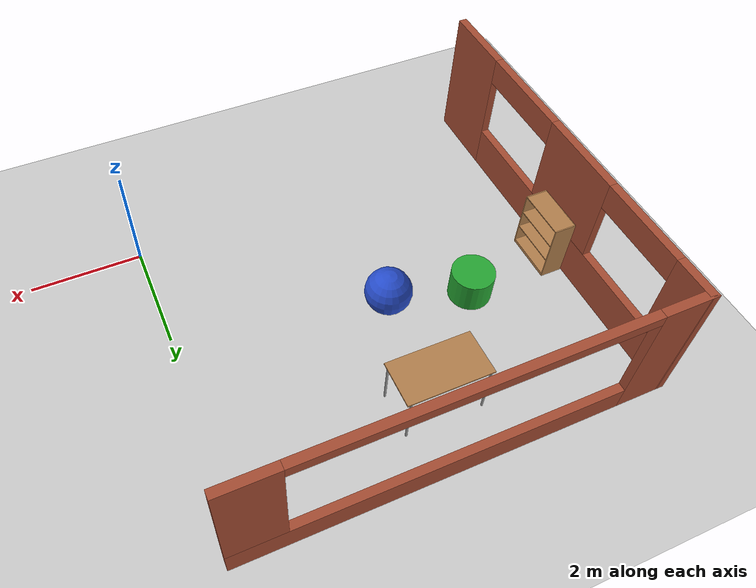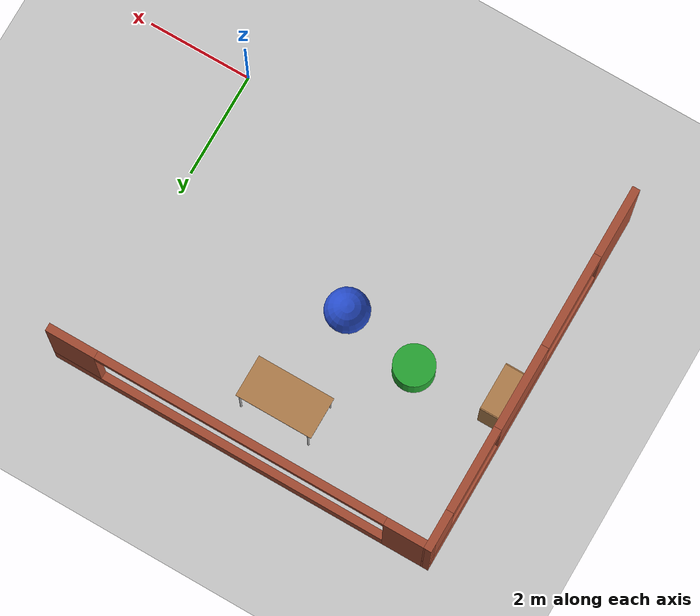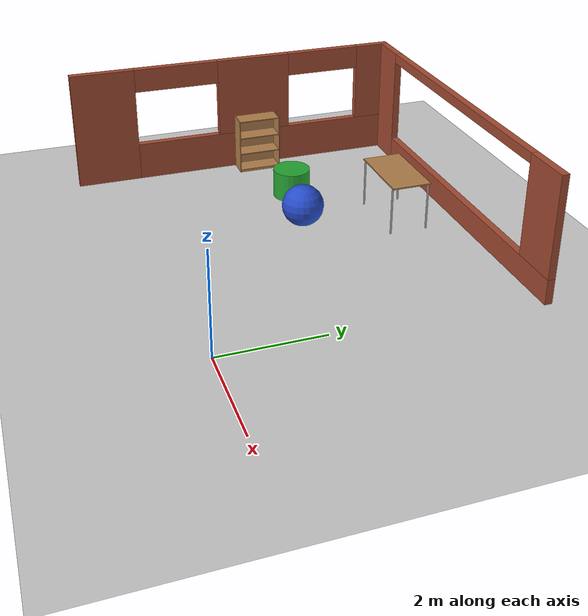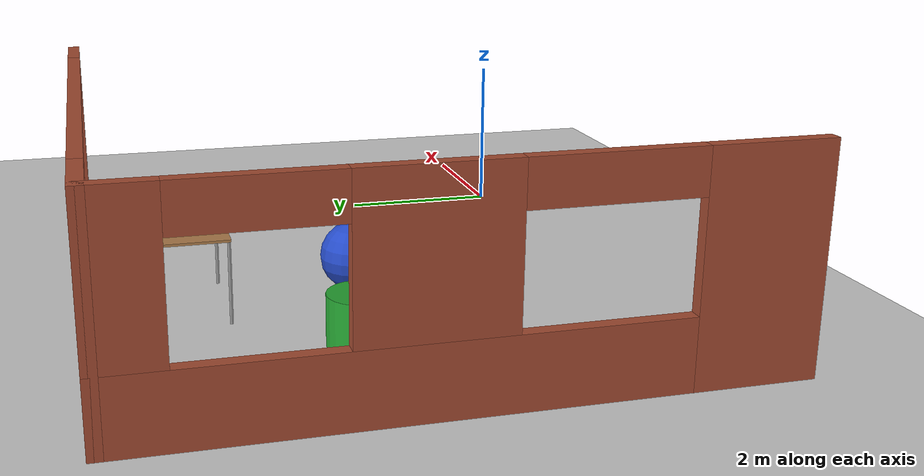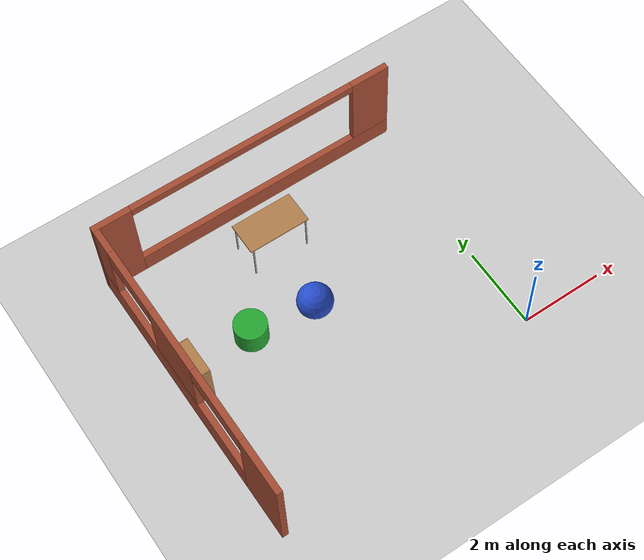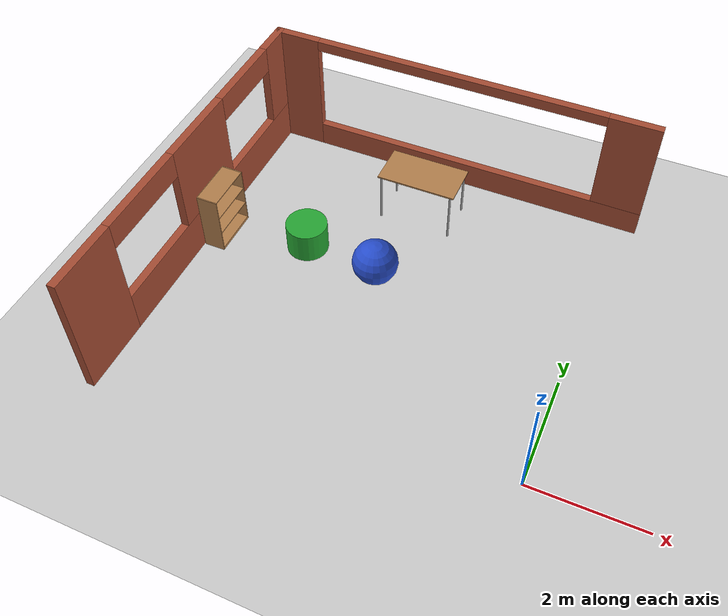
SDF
<sdf version="1.6">
 <world name="default">
  <model name="ground_plane">
   <static>1</static>
   <link name="link">
    <collision name="collision">
     <geometry><plane><normal>0 0 1</normal><size>100 100</size></plane></geometry>
     <surface>
      <contact><collide_bitmask>65535</collide_bitmask></contact>
      <friction><ode><mu>100</mu><mu2>50</mu2></ode></friction>
     </surface>
    </collision>
    <visual name="visual">
     <cast_shadows>0</cast_shadows>
     <geometry><plane><normal>0 0 1</normal><size>100 100</size></plane></geometry>
     <material>
      <script><uri>file://media/materials/scripts/gazebo.material</uri><name>Gazebo/Grey</name></script>
     </material>
    </visual>
   </link>
  </model>
  <model name="bookshelf">
   <static>1</static>
   <link name="link">
    <inertial><mass>1</mass></inertial>
    <collision name="back">
     <pose>0 0.005 0.6 0 -0 0</pose>
     <geometry><box><size>0.9 0.01 1.2</size></box></geometry>
    </collision>
    <visual name="visual1">
     <pose>0 0.005 0.6 0 -0 0</pose>
     <geometry><box><size>0.9 0.01 1.2</size></box></geometry>
     <material>
      <script><uri>file://media/materials/scripts/gazebo.material</uri><name>Gazebo/Wood</name></script>
     </material>
    </visual>
    <collision name="left_side">
     <pose>0.45 -0.195 0.6 0 -0 0</pose>
     <geometry><box><size>0.02 0.4 1.2</size></box></geometry>
    </collision>
    <visual name="visual2">
     <pose>0.45 -0.195 0.6 0 -0 0</pose>
     <geometry><box><size>0.02 0.4 1.2</size></box></geometry>
     <material>
      <script><uri>file://media/materials/scripts/gazebo.material</uri><name>Gazebo/Wood</name></script>
     </material>
    </visual>
    <collision name="right_side">
     <pose>-0.45 -0.195 0.6 0 -0 0</pose>
     <geometry><box><size>0.02 0.4 1.2</size></box></geometry>
    </collision>
    <visual name="visual3">
     <pose>-0.45 -0.195 0.6 0 -0 0</pose>
     <geometry><box><size>0.02 0.4 1.2</size></box></geometry>
     <material>
      <script><uri>file://media/materials/scripts/gazebo.material</uri><name>Gazebo/Wood</name></script>
     </material>
    </visual>
    <collision name="bottom">
     <pose>0 -0.195 0.03 0 -0 0</pose>
     <geometry><box><size>0.88 0.4 0.06</size></box></geometry>
    </collision>
    <visual name="visual4">
     <pose>0 -0.195 0.03 0 -0 0</pose>
     <geometry><box><size>0.88 0.4 0.06</size></box></geometry>
     <material>
      <script><uri>file://media/materials/scripts/gazebo.material</uri><name>Gazebo/Wood</name></script>
     </material>
    </visual>
    <collision name="top">
     <pose>0 -0.195 1.19 0 -0 0</pose>
     <geometry><box><size>0.88 0.4 0.02</size></box></geometry>
    </collision>
    <visual name="visual5">
     <pose>0 -0.195 1.19 0 -0 0</pose>
     <geometry><box><size>0.88 0.4 0.02</size></box></geometry>
     <material>
      <script><uri>file://media/materials/scripts/gazebo.material</uri><name>Gazebo/Wood</name></script>
     </material>
    </visual>
    <collision name="low_shelf">
     <pose>0 -0.195 0.43 0 -0 0</pose>
     <geometry><box><size>0.88 0.4 0.02</size></box></geometry>
    </collision>
    <visual name="visual6">
     <pose>0 -0.195 0.43 0 -0 0</pose>
     <geometry><box><size>0.88 0.4 0.02</size></box></geometry>
     <material>
      <script><uri>file://media/materials/scripts/gazebo.material</uri><name>Gazebo/Wood</name></script>
     </material>
    </visual>
    <collision name="high_shelf">
     <pose>0 -0.195 0.8 0 -0 0</pose>
     <geometry><box><size>0.88 0.4 0.02</size></box></geometry>
    </collision>
    <visual name="visual7">
     <pose>0 -0.195 0.8 0 -0 0</pose>
     <geometry><box><size>0.88 0.4 0.02</size></box></geometry>
     <material>
      <script><uri>file://media/materials/scripts/gazebo.material</uri><name>Gazebo/Wood</name></script>
     </material>
    </visual>
   </link>
   <pose>-6.96679 2.8402 0 0 -0 1.5708</pose>
  </model>
  <model name="table">
   <static>1</static>
   <link name="link">
    <collision name="surface">
     <pose>0 0 1 0 -0 0</pose>
     <geometry><box><size>1.5 0.8 0.03</size></box></geometry>
     <surface><friction><ode><mu>0.6</mu><mu2>0.6</mu2></ode></friction></surface>
    </collision>
    <visual name="visual1">
     <pose>0 0 1 0 -0 0</pose>
     <geometry><box><size>1.5 0.8 0.03</size></box></geometry>
     <material>
      <script><uri>file://media/materials/scripts/gazebo.material</uri><name>Gazebo/Wood</name></script>
     </material>
    </visual>
    <collision name="front_left_leg">
     <pose>0.68 0.38 0.5 0 -0 0</pose>
     <geometry><cylinder><radius>0.02</radius><length>1</length></cylinder></geometry>
    </collision>
    <visual name="front_left_leg">
     <pose>0.68 0.38 0.5 0 -0 0</pose>
     <geometry><cylinder><radius>0.02</radius><length>1</length></cylinder></geometry>
     <material>
      <script><uri>file://media/materials/scripts/gazebo.material</uri><name>Gazebo/Grey</name></script>
     </material>
    </visual>
    <collision name="front_right_leg">
     <pose>0.68 -0.38 0.5 0 -0 0</pose>
     <geometry><cylinder><radius>0.02</radius><length>1</length></cylinder></geometry>
    </collision>
    <visual name="front_right_leg">
     <pose>0.68 -0.38 0.5 0 -0 0</pose>
     <geometry><cylinder><radius>0.02</radius><length>1</length></cylinder></geometry>
     <material>
      <script><uri>file://media/materials/scripts/gazebo.material</uri><name>Gazebo/Grey</name></script>
     </material>
    </visual>
    <collision name="back_right_leg">
     <pose>-0.68 -0.38 0.5 0 -0 0</pose>
     <geometry><cylinder><radius>0.02</radius><length>1</length></cylinder></geometry>
    </collision>
    <visual name="back_right_leg">
     <pose>-0.68 -0.38 0.5 0 -0 0</pose>
     <geometry><cylinder><radius>0.02</radius><length>1</length></cylinder></geometry>
     <material>
      <script><uri>file://media/materials/scripts/gazebo.material</uri><name>Gazebo/Grey</name></script>
     </material>
    </visual>
    <collision name="back_left_leg">
     <pose>-0.68 0.38 0.5 0 -0 0</pose>
     <geometry><cylinder><radius>0.02</radius><length>1</length></cylinder></geometry>
    </collision>
    <visual name="back_left_leg">
     <pose>-0.68 0.38 0.5 0 -0 0</pose>
     <geometry><cylinder><radius>0.02</radius><length>1</length></cylinder></geometry>
     <material>
      <script><uri>file://media/materials/scripts/gazebo.material</uri><name>Gazebo/Grey</name></script>
     </material>
    </visual>
   </link>
   <pose>-3.56148 4.77229 0 0 -0 0</pose>
  </model>
  <model name="AssignmentBuilding_0">
   <link name="Wall_36">
    <pose>-2.70744 6.37584 0 0 -0 0</pose>
    <inertial>
     <mass>1</mass>
     <inertia><ixx>1</ixx><ixy>0</ixy><ixz>0</ixz><iyy>1</iyy><iyz>0</iyz><izz>1</izz></inertia>
    </inertial>
    <visual name="Wall_36_Visual_0">
     <pose>-3.28639 0 1.25 0 -0 0</pose>
     <geometry><box><size>0.927226 0.15 2.5</size></box></geometry>
     <material>
      <script><uri>file://media/materials/scripts/gazebo.material</uri><name>Gazebo/Bricks</name></script>
      <ambient>1 1 1 1</ambient>
      <shader type="pixel"><normal_map>__default__</normal_map></shader>
      <diffuse>0 0 0 1</diffuse>
      <specular>0 0 0 1</specular>
      <emissive>0 0 0 1</emissive>
     </material>
     <meta><layer>0</layer></meta>
    </visual>
    <visual name="Wall_36_Visual_1">
     <pose>0.463613 0 0.25 0 -0 0</pose>
     <geometry><box><size>6.57277 0.15 0.5</size></box></geometry>
     <material>
      <script><uri>file://media/materials/scripts/gazebo.material</uri><name>Gazebo/Bricks</name></script>
      <ambient>1 1 1 1</ambient>
      <shader type="pixel"><normal_map>__default__</normal_map></shader>
      <diffuse>0.7 0.7 0.7 1</diffuse>
      <specular>0.01 0.01 0.01 1</specular>
      <emissive>0 0 0 1</emissive>
     </material>
     <meta><layer>0</layer></meta>
    </visual>
    <visual name="Wall_36_Visual_2">
     <pose>3.27261 0 1.5 0 -0 0</pose>
     <geometry><box><size>0.954774 0.15 2</size></box></geometry>
     <material>
      <script><uri>file://media/materials/scripts/gazebo.material</uri><name>Gazebo/Bricks</name></script>
      <ambient>1 1 1 1</ambient>
      <shader type="pixel"><normal_map>__default__</normal_map></shader>
      <diffuse>0.7 0.7 0.7 1</diffuse>
      <specular>0.01 0.01 0.01 1</specular>
      <emissive>0 0 0 1</emissive>
     </material>
     <meta><layer>0</layer></meta>
    </visual>
    <visual name="Wall_36_Visual_3">
     <pose>-0.013774 0 2.4 0 -0 0</pose>
     <geometry><box><size>5.618 0.15 0.2</size></box></geometry>
     <material>
      <script><uri>file://media/materials/scripts/gazebo.material</uri><name>Gazebo/Bricks</name></script>
      <ambient>1 1 1 1</ambient>
      <shader type="pixel"><normal_map>__default__</normal_map></shader>
      <diffuse>0.7 0.7 0.7 1</diffuse>
      <specular>0.01 0.01 0.01 1</specular>
      <emissive>0 0 0 1</emissive>
     </material>
     <meta><layer>0</layer></meta>
    </visual>
    <collision name="Wall_36_Collision_0">
     <pose>-3.28639 0 1.25 0 -0 0</pose>
     <geometry><box><size>0.927226 0.15 2.5</size></box></geometry>
     <surface>
      <friction>
       <ode><mu>1</mu><mu2>1</mu2><fdir1>0 0 0</fdir1><slip1>0</slip1><slip2>0</slip2></ode>
       <torsional>
        <coefficient>1</coefficient>
        <patch_radius>0</patch_radius>
        <surface_radius>0</surface_radius>
        <use_patch_radius>1</use_patch_radius>
        <ode><slip>0</slip></ode>
       </torsional>
      </friction>
      <bounce><restitution_coefficient>0</restitution_coefficient><threshold>1e+06</threshold></bounce>
      <contact>
       <collide_without_contact>0</collide_without_contact>
       <collide_without_contact_bitmask>1</collide_without_contact_bitmask>
       <collide_bitmask>1</collide_bitmask>
       <ode>
        <soft_cfm>0</soft_cfm>
        <soft_erp>0.2</soft_erp>
        <kp>1e+13</kp>
        <kd>1</kd>
        <max_vel>0.01</max_vel>
        <min_depth>0</min_depth>
       </ode>
       <bullet>
        <split_impulse>1</split_impulse>
        <split_impulse_penetration_threshold>-0.01</split_impulse_penetration_threshold>
        <soft_cfm>0</soft_cfm>
        <soft_erp>0.2</soft_erp>
        <kp>1e+13</kp>
        <kd>1</kd>
       </bullet>
      </contact>
     </surface>
    </collision>
    <collision name="Wall_36_Collision_1">
     <pose>0.463613 0 0.25 0 -0 0</pose>
     <geometry><box><size>6.57277 0.15 0.5</size></box></geometry>
     <surface>
      <friction>
       <ode><mu>1</mu><mu2>1</mu2><fdir1>0 0 0</fdir1><slip1>0</slip1><slip2>0</slip2></ode>
       <torsional>
        <coefficient>1</coefficient>
        <patch_radius>0</patch_radius>
        <surface_radius>0</surface_radius>
        <use_patch_radius>1</use_patch_radius>
        <ode><slip>0</slip></ode>
       </torsional>
      </friction>
      <bounce><restitution_coefficient>0</restitution_coefficient><threshold>1e+06</threshold></bounce>
      <contact>
       <collide_without_contact>0</collide_without_contact>
       <collide_without_contact_bitmask>1</collide_without_contact_bitmask>
       <collide_bitmask>1</collide_bitmask>
       <ode>
        <soft_cfm>0</soft_cfm>
        <soft_erp>0.2</soft_erp>
        <kp>1e+13</kp>
        <kd>1</kd>
        <max_vel>0.01</max_vel>
        <min_depth>0</min_depth>
       </ode>
       <bullet>
        <split_impulse>1</split_impulse>
        <split_impulse_penetration_threshold>-0.01</split_impulse_penetration_threshold>
        <soft_cfm>0</soft_cfm>
        <soft_erp>0.2</soft_erp>
        <kp>1e+13</kp>
        <kd>1</kd>
       </bullet>
      </contact>
     </surface>
    </collision>
    <collision name="Wall_36_Collision_2">
     <pose>3.27261 0 1.5 0 -0 0</pose>
     <geometry><box><size>0.954774 0.15 2</size></box></geometry>
     <surface>
      <friction>
       <ode><mu>1</mu><mu2>1</mu2><fdir1>0 0 0</fdir1><slip1>0</slip1><slip2>0</slip2></ode>
       <torsional>
        <coefficient>1</coefficient>
        <patch_radius>0</patch_radius>
        <surface_radius>0</surface_radius>
        <use_patch_radius>1</use_patch_radius>
        <ode><slip>0</slip></ode>
       </torsional>
      </friction>
      <bounce><restitution_coefficient>0</restitution_coefficient><threshold>1e+06</threshold></bounce>
      <contact>
       <collide_without_contact>0</collide_without_contact>
       <collide_without_contact_bitmask>1</collide_without_contact_bitmask>
       <collide_bitmask>1</collide_bitmask>
       <ode>
        <soft_cfm>0</soft_cfm>
        <soft_erp>0.2</soft_erp>
        <kp>1e+13</kp>
        <kd>1</kd>
        <max_vel>0.01</max_vel>
        <min_depth>0</min_depth>
       </ode>
       <bullet>
        <split_impulse>1</split_impulse>
        <split_impulse_penetration_threshold>-0.01</split_impulse_penetration_threshold>
        <soft_cfm>0</soft_cfm>
        <soft_erp>0.2</soft_erp>
        <kp>1e+13</kp>
        <kd>1</kd>
       </bullet>
      </contact>
     </surface>
    </collision>
    <collision name="Wall_36_Collision_3">
     <pose>-0.013774 0 2.4 0 -0 0</pose>
     <geometry><box><size>5.618 0.15 0.2</size></box></geometry>
     <surface>
      <friction>
       <ode><mu>1</mu><mu2>1</mu2><fdir1>0 0 0</fdir1><slip1>0</slip1><slip2>0</slip2></ode>
       <torsional>
        <coefficient>1</coefficient>
        <patch_radius>0</patch_radius>
        <surface_radius>0</surface_radius>
        <use_patch_radius>1</use_patch_radius>
        <ode><slip>0</slip></ode>
       </torsional>
      </friction>
      <bounce><restitution_coefficient>0</restitution_coefficient><threshold>1e+06</threshold></bounce>
      <contact>
       <collide_without_contact>0</collide_without_contact>
       <collide_without_contact_bitmask>1</collide_without_contact_bitmask>
       <collide_bitmask>1</collide_bitmask>
       <ode>
        <soft_cfm>0</soft_cfm>
        <soft_erp>0.2</soft_erp>
        <kp>1e+13</kp>
        <kd>1</kd>
        <max_vel>0.01</max_vel>
        <min_depth>0</min_depth>
       </ode>
       <bullet>
        <split_impulse>1</split_impulse>
        <split_impulse_penetration_threshold>-0.01</split_impulse_penetration_threshold>
        <soft_cfm>0</soft_cfm>
        <soft_erp>0.2</soft_erp>
        <kp>1e+13</kp>
        <kd>1</kd>
       </bullet>
      </contact>
     </surface>
    </collision>
   </link>
   <link name="Wall_48">
    <pose>-6.38208 2.87945 0 0 -0 1.5709</pose>
    <inertial>
     <mass>1</mass>
     <inertia><ixx>1</ixx><ixy>0</ixy><ixz>0</ixz><iyy>1</iyy><iyz>0</iyz><izz>1</izz></inertia>
    </inertial>
    <visual name="Wall_48_Visual_0">
     <pose>-2.89905 0 1.25 0 -0 0</pose>
     <geometry><box><size>1.34467 0.15 2.5</size></box></geometry>
     <material>
      <script><uri>file://media/materials/scripts/gazebo.material</uri><name>Gazebo/Bricks</name></script>
      <ambient>1 1 1 1</ambient>
      <shader type="pixel"><normal_map>__default__</normal_map></shader>
      <diffuse>1 1 1 1</diffuse>
      <specular>0.2 0.2 0.2 1</specular>
      <emissive>0 0 0 1</emissive>
     </material>
     <meta><layer>0</layer></meta>
    </visual>
    <visual name="Wall_48_Visual_1">
     <pose>0.672335 0 0.4 0 -0 0</pose>
     <geometry><box><size>5.7981 0.15 0.8</size></box></geometry>
     <material>
      <script><uri>file://media/materials/scripts/gazebo.material</uri><name>Gazebo/Bricks</name></script>
      <ambient>1 1 1 1</ambient>
      <shader type="pixel"><normal_map>__default__</normal_map></shader>
      <diffuse>0.7 0.7 0.7 1</diffuse>
      <specular>0.01 0.01 0.01 1</specular>
      <emissive>0 0 0 1</emissive>
     </material>
     <meta><layer>0</layer></meta>
    </visual>
    <visual name="Wall_48_Visual_2">
     <pose>0.391018 0 1.65 0 -0 0</pose>
     <geometry><box><size>1.60972 0.15 1.7</size></box></geometry>
     <material>
      <script><uri>file://media/materials/scripts/gazebo.material</uri><name>Gazebo/Bricks</name></script>
      <ambient>1 1 1 1</ambient>
      <shader type="pixel"><normal_map>__default__</normal_map></shader>
      <diffuse>0.7 0.7 0.7 1</diffuse>
      <specular>0.01 0.01 0.01 1</specular>
      <emissive>0 0 0 1</emissive>
     </material>
     <meta><layer>0</layer></meta>
    </visual>
    <visual name="Wall_48_Visual_3">
     <pose>3.19363 0 1.65 0 -0 0</pose>
     <geometry><box><size>0.755509 0.15 1.7</size></box></geometry>
     <material>
      <script><uri>file://media/materials/scripts/gazebo.material</uri><name>Gazebo/Bricks</name></script>
      <ambient>1 1 1 1</ambient>
      <shader type="pixel"><normal_map>__default__</normal_map></shader>
      <diffuse>0.7 0.7 0.7 1</diffuse>
      <specular>0.01 0.01 0.01 1</specular>
      <emissive>0 0 0 1</emissive>
     </material>
     <meta><layer>0</layer></meta>
    </visual>
    <visual name="Wall_48_Visual_4">
     <pose>-1.32028 0 2.25 0 -0 0</pose>
     <geometry><box><size>1.81288 0.15 0.5</size></box></geometry>
     <material>
      <script><uri>file://media/materials/scripts/gazebo.material</uri><name>Gazebo/Bricks</name></script>
      <ambient>1 1 1 1</ambient>
      <shader type="pixel"><normal_map>__default__</normal_map></shader>
      <diffuse>0.7 0.7 0.7 1</diffuse>
      <specular>0.01 0.01 0.01 1</specular>
      <emissive>0 0 0 1</emissive>
     </material>
     <meta><layer>0</layer></meta>
    </visual>
    <visual name="Wall_48_Visual_5">
     <pose>2.00588 0 2.25 0 -0 0</pose>
     <geometry><box><size>1.62 0.15 0.5</size></box></geometry>
     <material>
      <script><uri>file://media/materials/scripts/gazebo.material</uri><name>Gazebo/Bricks</name></script>
      <ambient>1 1 1 1</ambient>
      <shader type="pixel"><normal_map>__default__</normal_map></shader>
      <diffuse>0.7 0.7 0.7 1</diffuse>
      <specular>0.01 0.01 0.01 1</specular>
      <emissive>0 0 0 1</emissive>
     </material>
     <meta><layer>0</layer></meta>
    </visual>
    <collision name="Wall_48_Collision_0">
     <pose>-2.89905 0 1.25 0 -0 0</pose>
     <geometry><box><size>1.34467 0.15 2.5</size></box></geometry>
     <surface>
      <friction>
       <ode><mu>1</mu><mu2>1</mu2><fdir1>0 0 0</fdir1><slip1>0</slip1><slip2>0</slip2></ode>
       <torsional>
        <coefficient>1</coefficient>
        <patch_radius>0</patch_radius>
        <surface_radius>0</surface_radius>
        <use_patch_radius>1</use_patch_radius>
        <ode><slip>0</slip></ode>
       </torsional>
      </friction>
      <bounce><restitution_coefficient>0</restitution_coefficient><threshold>1e+06</threshold></bounce>
      <contact>
       <collide_without_contact>0</collide_without_contact>
       <collide_without_contact_bitmask>1</collide_without_contact_bitmask>
       <collide_bitmask>1</collide_bitmask>
       <ode>
        <soft_cfm>0</soft_cfm>
        <soft_erp>0.2</soft_erp>
        <kp>1e+13</kp>
        <kd>1</kd>
        <max_vel>0.01</max_vel>
        <min_depth>0</min_depth>
       </ode>
       <bullet>
        <split_impulse>1</split_impulse>
        <split_impulse_penetration_threshold>-0.01</split_impulse_penetration_threshold>
        <soft_cfm>0</soft_cfm>
        <soft_erp>0.2</soft_erp>
        <kp>1e+13</kp>
        <kd>1</kd>
       </bullet>
      </contact>
     </surface>
    </collision>
    <collision name="Wall_48_Collision_1">
     <pose>0.672335 0 0.4 0 -0 0</pose>
     <geometry><box><size>5.7981 0.15 0.8</size></box></geometry>
     <surface>
      <friction>
       <ode><mu>1</mu><mu2>1</mu2><fdir1>0 0 0</fdir1><slip1>0</slip1><slip2>0</slip2></ode>
       <torsional>
        <coefficient>1</coefficient>
        <patch_radius>0</patch_radius>
        <surface_radius>0</surface_radius>
        <use_patch_radius>1</use_patch_radius>
        <ode><slip>0</slip></ode>
       </torsional>
      </friction>
      <bounce><restitution_coefficient>0</restitution_coefficient><threshold>1e+06</threshold></bounce>
      <contact>
       <collide_without_contact>0</collide_without_contact>
       <collide_without_contact_bitmask>1</collide_without_contact_bitmask>
       <collide_bitmask>1</collide_bitmask>
       <ode>
        <soft_cfm>0</soft_cfm>
        <soft_erp>0.2</soft_erp>
        <kp>1e+13</kp>
        <kd>1</kd>
        <max_vel>0.01</max_vel>
        <min_depth>0</min_depth>
       </ode>
       <bullet>
        <split_impulse>1</split_impulse>
        <split_impulse_penetration_threshold>-0.01</split_impulse_penetration_threshold>
        <soft_cfm>0</soft_cfm>
        <soft_erp>0.2</soft_erp>
        <kp>1e+13</kp>
        <kd>1</kd>
       </bullet>
      </contact>
     </surface>
    </collision>
    <collision name="Wall_48_Collision_2">
     <pose>0.391018 0 1.65 0 -0 0</pose>
     <geometry><box><size>1.60972 0.15 1.7</size></box></geometry>
     <surface>
      <friction>
       <ode><mu>1</mu><mu2>1</mu2><fdir1>0 0 0</fdir1><slip1>0</slip1><slip2>0</slip2></ode>
       <torsional>
        <coefficient>1</coefficient>
        <patch_radius>0</patch_radius>
        <surface_radius>0</surface_radius>
        <use_patch_radius>1</use_patch_radius>
        <ode><slip>0</slip></ode>
       </torsional>
      </friction>
      <bounce><restitution_coefficient>0</restitution_coefficient><threshold>1e+06</threshold></bounce>
      <contact>
       <collide_without_contact>0</collide_without_contact>
       <collide_without_contact_bitmask>1</collide_without_contact_bitmask>
       <collide_bitmask>1</collide_bitmask>
       <ode>
        <soft_cfm>0</soft_cfm>
        <soft_erp>0.2</soft_erp>
        <kp>1e+13</kp>
        <kd>1</kd>
        <max_vel>0.01</max_vel>
        <min_depth>0</min_depth>
       </ode>
       <bullet>
        <split_impulse>1</split_impulse>
        <split_impulse_penetration_threshold>-0.01</split_impulse_penetration_threshold>
        <soft_cfm>0</soft_cfm>
        <soft_erp>0.2</soft_erp>
        <kp>1e+13</kp>
        <kd>1</kd>
       </bullet>
      </contact>
     </surface>
    </collision>
    <collision name="Wall_48_Collision_3">
     <pose>3.19363 0 1.65 0 -0 0</pose>
     <geometry><box><size>0.755509 0.15 1.7</size></box></geometry>
     <surface>
      <friction>
       <ode><mu>1</mu><mu2>1</mu2><fdir1>0 0 0</fdir1><slip1>0</slip1><slip2>0</slip2></ode>
       <torsional>
        <coefficient>1</coefficient>
        <patch_radius>0</patch_radius>
        <surface_radius>0</surface_radius>
        <use_patch_radius>1</use_patch_radius>
        <ode><slip>0</slip></ode>
       </torsional>
      </friction>
      <bounce><restitution_coefficient>0</restitution_coefficient><threshold>1e+06</threshold></bounce>
      <contact>
       <collide_without_contact>0</collide_without_contact>
       <collide_without_contact_bitmask>1</collide_without_contact_bitmask>
       <collide_bitmask>1</collide_bitmask>
       <ode>
        <soft_cfm>0</soft_cfm>
        <soft_erp>0.2</soft_erp>
        <kp>1e+13</kp>
        <kd>1</kd>
        <max_vel>0.01</max_vel>
        <min_depth>0</min_depth>
       </ode>
       <bullet>
        <split_impulse>1</split_impulse>
        <split_impulse_penetration_threshold>-0.01</split_impulse_penetration_threshold>
        <soft_cfm>0</soft_cfm>
        <soft_erp>0.2</soft_erp>
        <kp>1e+13</kp>
        <kd>1</kd>
       </bullet>
      </contact>
     </surface>
    </collision>
    <collision name="Wall_48_Collision_4">
     <pose>-1.32028 0 2.25 0 -0 0</pose>
     <geometry><box><size>1.81288 0.15 0.5</size></box></geometry>
     <surface>
      <friction>
       <ode><mu>1</mu><mu2>1</mu2><fdir1>0 0 0</fdir1><slip1>0</slip1><slip2>0</slip2></ode>
       <torsional>
        <coefficient>1</coefficient>
        <patch_radius>0</patch_radius>
        <surface_radius>0</surface_radius>
        <use_patch_radius>1</use_patch_radius>
        <ode><slip>0</slip></ode>
       </torsional>
      </friction>
      <bounce><restitution_coefficient>0</restitution_coefficient><threshold>1e+06</threshold></bounce>
      <contact>
       <collide_without_contact>0</collide_without_contact>
       <collide_without_contact_bitmask>1</collide_without_contact_bitmask>
       <collide_bitmask>1</collide_bitmask>
       <ode>
        <soft_cfm>0</soft_cfm>
        <soft_erp>0.2</soft_erp>
        <kp>1e+13</kp>
        <kd>1</kd>
        <max_vel>0.01</max_vel>
        <min_depth>0</min_depth>
       </ode>
       <bullet>
        <split_impulse>1</split_impulse>
        <split_impulse_penetration_threshold>-0.01</split_impulse_penetration_threshold>
        <soft_cfm>0</soft_cfm>
        <soft_erp>0.2</soft_erp>
        <kp>1e+13</kp>
        <kd>1</kd>
       </bullet>
      </contact>
     </surface>
    </collision>
    <collision name="Wall_48_Collision_5">
     <pose>2.00588 0 2.25 0 -0 0</pose>
     <geometry><box><size>1.62 0.15 0.5</size></box></geometry>
     <surface>
      <friction>
       <ode><mu>1</mu><mu2>1</mu2><fdir1>0 0 0</fdir1><slip1>0</slip1><slip2>0</slip2></ode>
       <torsional>
        <coefficient>1</coefficient>
        <patch_radius>0</patch_radius>
        <surface_radius>0</surface_radius>
        <use_patch_radius>1</use_patch_radius>
        <ode><slip>0</slip></ode>
       </torsional>
      </friction>
      <bounce><restitution_coefficient>0</restitution_coefficient><threshold>1e+06</threshold></bounce>
      <contact>
       <collide_without_contact>0</collide_without_contact>
       <collide_without_contact_bitmask>1</collide_without_contact_bitmask>
       <collide_bitmask>1</collide_bitmask>
       <ode>
        <soft_cfm>0</soft_cfm>
        <soft_erp>0.2</soft_erp>
        <kp>1e+13</kp>
        <kd>1</kd>
        <max_vel>0.01</max_vel>
        <min_depth>0</min_depth>
       </ode>
       <bullet>
        <split_impulse>1</split_impulse>
        <split_impulse_penetration_threshold>-0.01</split_impulse_penetration_threshold>
        <soft_cfm>0</soft_cfm>
        <soft_erp>0.2</soft_erp>
        <kp>1e+13</kp>
        <kd>1</kd>
       </bullet>
      </contact>
     </surface>
    </collision>
   </link>
   <static>1</static>
   <pose>-0.68157 -0.42903 0 0 -0 0</pose>
  </model>
  <model name="unit_cylinder_0">
   <link name="link">
    <inertial>
     <mass>1</mass>
     <inertia><ixx>0.145833</ixx><ixy>0</ixy><ixz>0</ixz><iyy>0.145833</iyy><iyz>0</iyz><izz>0.125</izz></inertia>
    </inertial>
    <visual name="visual">
     <geometry><cylinder><radius>0.386388</radius><length>0.59847</length></cylinder></geometry>
     <material>
      <script><name>Gazebo/Green</name><uri>file://media/materials/scripts/gazebo.material</uri></script>
      <shader type="pixel"><normal_map>__default__</normal_map></shader>
      <ambient>0 1 0 1</ambient>
      <diffuse>0 1 0 1</diffuse>
      <specular>0.1 0.1 0.1 1</specular>
      <emissive>0 0 0 1</emissive>
     </material>
    </visual>
    <collision name="collision">
     <geometry><cylinder><radius>0.386388</radius><length>0.59847</length></cylinder></geometry>
     <surface>
      <friction>
       <ode><mu>1</mu><mu2>1</mu2><fdir1>0 0 0</fdir1><slip1>0</slip1><slip2>0</slip2></ode>
       <torsional>
        <coefficient>1</coefficient>
        <patch_radius>0</patch_radius>
        <surface_radius>0</surface_radius>
        <use_patch_radius>1</use_patch_radius>
        <ode><slip>0</slip></ode>
       </torsional>
      </friction>
      <bounce><restitution_coefficient>0</restitution_coefficient><threshold>1e+06</threshold></bounce>
      <contact>
       <collide_without_contact>0</collide_without_contact>
       <collide_without_contact_bitmask>1</collide_without_contact_bitmask>
       <collide_bitmask>1</collide_bitmask>
       <ode>
        <soft_cfm>0</soft_cfm>
        <soft_erp>0.2</soft_erp>
        <kp>1e+13</kp>
        <kd>1</kd>
        <max_vel>0.01</max_vel>
        <min_depth>0</min_depth>
       </ode>
       <bullet>
        <split_impulse>1</split_impulse>
        <split_impulse_penetration_threshold>-0.01</split_impulse_penetration_threshold>
        <soft_cfm>0</soft_cfm>
        <soft_erp>0.2</soft_erp>
        <kp>1e+13</kp>
        <kd>1</kd>
       </bullet>
      </contact>
     </surface>
    </collision>
   </link>
   <static>0</static>
   <pose>-5.18029 3.10626 0.299235 0 0 -1.03302</pose>
  </model>
  <model name="unit_sphere_0_0_clone_2">
   <link name="link">
    <inertial>
     <mass>1</mass>
     <inertia><ixx>0.1</ixx><ixy>0</ixy><ixz>0</ixz><iyy>0.1</iyy><iyz>0</iyz><izz>0.1</izz></inertia>
    </inertial>
    <visual name="visual">
     <geometry><sphere><radius>0.417483</radius></sphere></geometry>
     <material>
      <script><name>Gazebo/Blue</name><uri>file://media/materials/scripts/gazebo.material</uri></script>
      <shader type="pixel"><normal_map>__default__</normal_map></shader>
      <ambient>0 0 1 1</ambient>
      <diffuse>0 0 1 1</diffuse>
      <specular>0.1 0.1 0.1 1</specular>
      <emissive>0 0 0 1</emissive>
     </material>
    </visual>
    <collision name="collision">
     <geometry><sphere><radius>0.417483</radius></sphere></geometry>
     <surface>
      <friction>
       <ode><mu>1</mu><mu2>1</mu2><fdir1>0 0 0</fdir1><slip1>0</slip1><slip2>0</slip2></ode>
       <torsional>
        <coefficient>1</coefficient>
        <patch_radius>0</patch_radius>
        <surface_radius>0</surface_radius>
        <use_patch_radius>1</use_patch_radius>
        <ode><slip>0</slip></ode>
       </torsional>
      </friction>
      <bounce><restitution_coefficient>0</restitution_coefficient><threshold>1e+06</threshold></bounce>
      <contact>
       <collide_without_contact>0</collide_without_contact>
       <collide_without_contact_bitmask>1</collide_without_contact_bitmask>
       <collide_bitmask>1</collide_bitmask>
       <ode>
        <soft_cfm>0</soft_cfm>
        <soft_erp>0.2</soft_erp>
        <kp>1e+13</kp>
        <kd>1</kd>
        <max_vel>0.01</max_vel>
        <min_depth>0</min_depth>
       </ode>
       <bullet>
        <split_impulse>1</split_impulse>
        <split_impulse_penetration_threshold>-0.01</split_impulse_penetration_threshold>
        <soft_cfm>0</soft_cfm>
        <soft_erp>0.2</soft_erp>
        <kp>1e+13</kp>
        <kd>1</kd>
       </bullet>
      </contact>
     </surface>
    </collision>
   </link>
   <static>0</static>
   <pose>-3.68135 2.83431 0.5 0 -0 0</pose>
  </model>
 </world>
</sdf>
